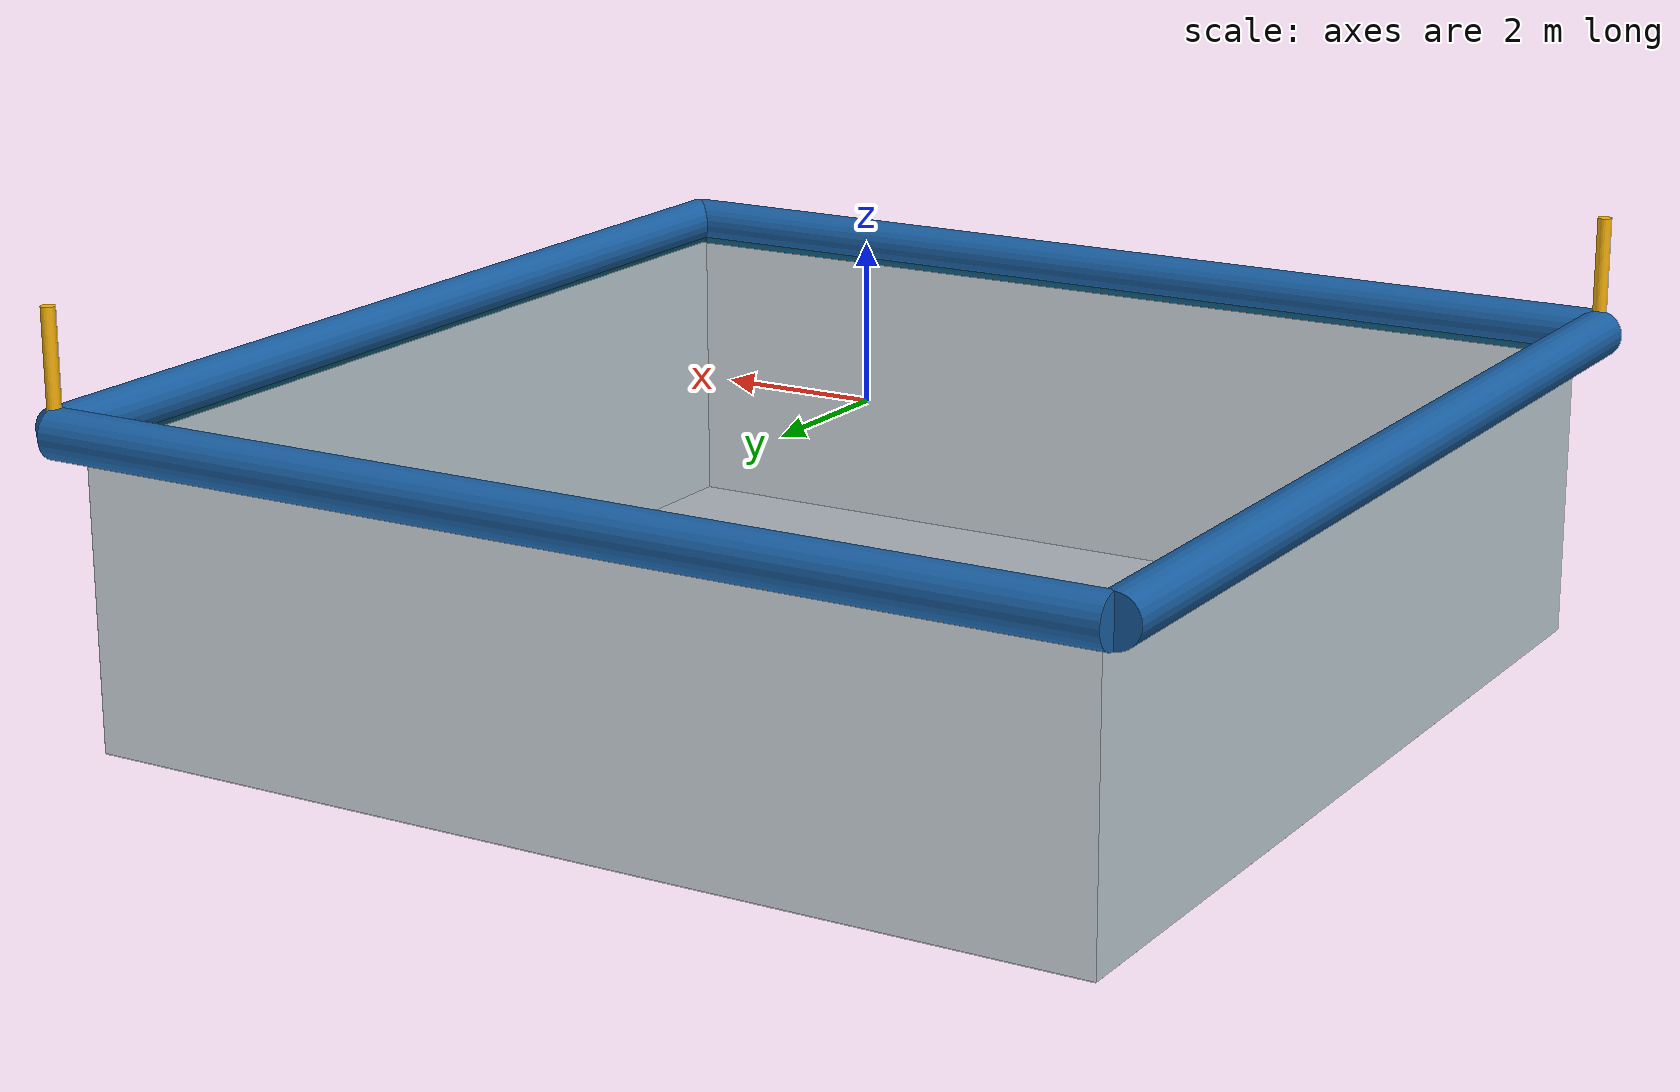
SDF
<?xml version="1.0"?>
<sdf version="1.10">
  <model name="aquaculture_cage">
    <link name="cage">
      <inertial><mass>450</mass><inertia><ixx>5500</ixx><iyy>5500</iyy><izz>8200</izz></inertia></inertial>
      <collision name="north_float_collision"><pose>0 7 0.25 0 1.5708 0</pose><geometry><cylinder><radius>0.3</radius><length>14</length></cylinder></geometry></collision>
      <collision name="south_float_collision"><pose>0 -7 0.25 0 1.5708 0</pose><geometry><cylinder><radius>0.3</radius><length>14</length></cylinder></geometry></collision>
      <collision name="east_float_collision"><pose>7 0 0.25 1.5708 0 0</pose><geometry><cylinder><radius>0.3</radius><length>14</length></cylinder></geometry></collision>
      <collision name="west_float_collision"><pose>-7 0 0.25 1.5708 0 0</pose><geometry><cylinder><radius>0.3</radius><length>14</length></cylinder></geometry></collision>
      <visual name="north_float"><pose>0 7 0.25 0 1.5708 0</pose><geometry><cylinder><radius>0.32</radius><length>14</length></cylinder></geometry><material><ambient>0.08 0.2 0.34 1</ambient><diffuse>0.1 0.38 0.65 1</diffuse><specular>0.3 0.35 0.4 1</specular></material></visual>
      <visual name="south_float"><pose>0 -7 0.25 0 1.5708 0</pose><geometry><cylinder><radius>0.32</radius><length>14</length></cylinder></geometry><material><ambient>0.08 0.2 0.34 1</ambient><diffuse>0.1 0.38 0.65 1</diffuse></material></visual>
      <visual name="east_float"><pose>7 0 0.25 1.5708 0 0</pose><geometry><cylinder><radius>0.32</radius><length>14</length></cylinder></geometry><material><ambient>0.08 0.2 0.34 1</ambient><diffuse>0.1 0.38 0.65 1</diffuse></material></visual>
      <visual name="west_float"><pose>-7 0 0.25 1.5708 0 0</pose><geometry><cylinder><radius>0.32</radius><length>14</length></cylinder></geometry><material><ambient>0.08 0.2 0.34 1</ambient><diffuse>0.1 0.38 0.65 1</diffuse></material></visual>
      <visual name="net_bottom"><pose>0 0 -3.8 0 0 0</pose><geometry><box><size>13.5 13.5 0.03</size></box></geometry><material><ambient>0.02 0.14 0.11 0.35</ambient><diffuse>0.03 0.3 0.22 0.35</diffuse></material></visual>
      <visual name="net_north"><pose>0 6.75 -1.8 0 0 0</pose><geometry><box><size>13.5 0.03 4</size></box></geometry><material><ambient>0.02 0.16 0.12 0.38</ambient><diffuse>0.03 0.34 0.24 0.38</diffuse></material></visual>
      <visual name="net_south"><pose>0 -6.75 -1.8 0 0 0</pose><geometry><box><size>13.5 0.03 4</size></box></geometry><material><ambient>0.02 0.16 0.12 0.38</ambient><diffuse>0.03 0.34 0.24 0.38</diffuse></material></visual>
      <visual name="net_east"><pose>6.75 0 -1.8 0 0 0</pose><geometry><box><size>0.03 13.5 4</size></box></geometry><material><ambient>0.02 0.16 0.12 0.38</ambient><diffuse>0.03 0.34 0.24 0.38</diffuse></material></visual>
      <visual name="net_west"><pose>-6.75 0 -1.8 0 0 0</pose><geometry><box><size>0.03 13.5 4</size></box></geometry><material><ambient>0.02 0.16 0.12 0.38</ambient><diffuse>0.03 0.34 0.24 0.38</diffuse></material></visual>
      <visual name="corner_marker_ne"><pose>7 7 1.05 0 0 0</pose><geometry><cylinder><radius>0.09</radius><length>1.5</length></cylinder></geometry><material><ambient>0.85 0.55 0.02 1</ambient><diffuse>1 0.72 0.05 1</diffuse></material></visual>
      <visual name="corner_marker_sw"><pose>-7 -7 1.05 0 0 0</pose><geometry><cylinder><radius>0.09</radius><length>1.5</length></cylinder></geometry><material><ambient>0.85 0.55 0.02 1</ambient><diffuse>1 0.72 0.05 1</diffuse></material></visual>
      <light name="cage_light_ne" type="point"><pose>7 7 1.8 0 0 0</pose><cast_shadows>false</cast_shadows><intensity>0.8</intensity><diffuse>1 0.72 0.08 1</diffuse><attenuation><range>18</range><constant>0.8</constant><linear>0.06</linear><quadratic>0.003</quadratic></attenuation></light>
      <light name="cage_light_sw" type="point"><pose>-7 -7 1.8 0 0 0</pose><cast_shadows>false</cast_shadows><intensity>0.8</intensity><diffuse>1 0.72 0.08 1</diffuse><attenuation><range>18</range><constant>0.8</constant><linear>0.06</linear><quadratic>0.003</quadratic></attenuation></light>
    </link>
    <plugin filename="libBoatWaveFollower.so" name="gz::sim::systems::BoatWaveFollower"><mean_z>0</mean_z><heave_amplitude>0.05</heave_amplitude><roll_amplitude>0.012</roll_amplitude><pitch_amplitude>0.012</pitch_amplitude><primary_frequency>0.75</primary_frequency><secondary_frequency>1.2</secondary_frequency><wave_number_x>0.12</wave_number_x><wave_number_y>0.1</wave_number_y></plugin>
  </model>
</sdf>
